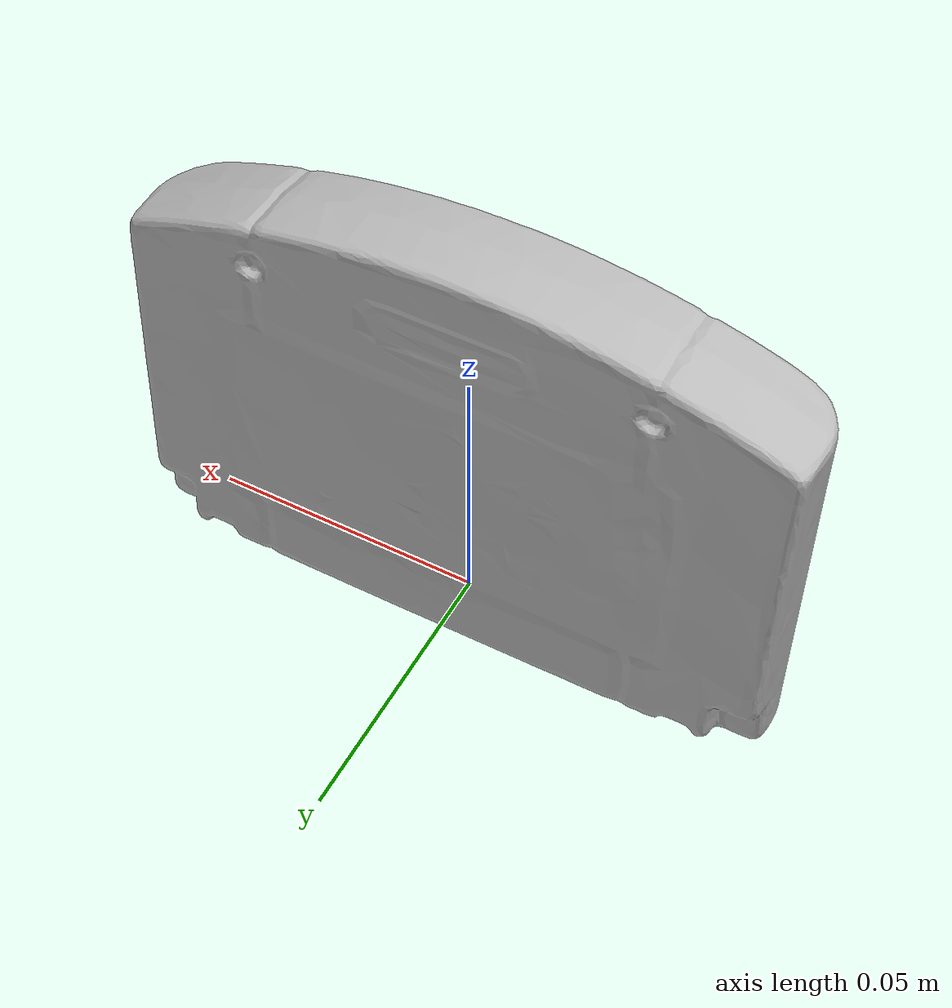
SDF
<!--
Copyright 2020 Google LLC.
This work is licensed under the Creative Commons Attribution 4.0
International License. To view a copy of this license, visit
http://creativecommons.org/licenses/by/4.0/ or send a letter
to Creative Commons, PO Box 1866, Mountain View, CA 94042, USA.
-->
<?xml version="1.0" ?>
<sdf version="1.6">
  <model name="Beetle_Adventure_Racing_Nintendo_64">
    <link name="link_0">
      <visual name="visual">
        <geometry>
          <mesh>
            <uri>meshes/model.obj</uri>
          </mesh>
        </geometry>
      </visual>
      <collision name="collision_0">
        <geometry>
          <mesh>
            <uri>meshes/model.obj</uri>
          </mesh>
        </geometry>
      </collision>
    </link>
  </model>
</sdf>
